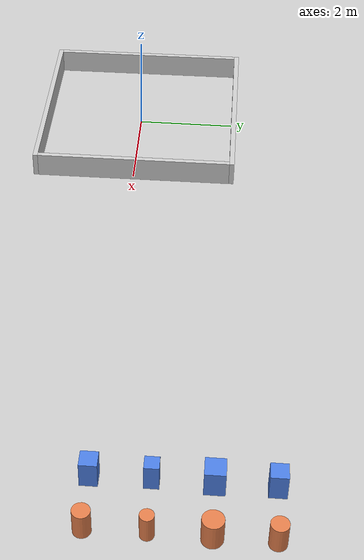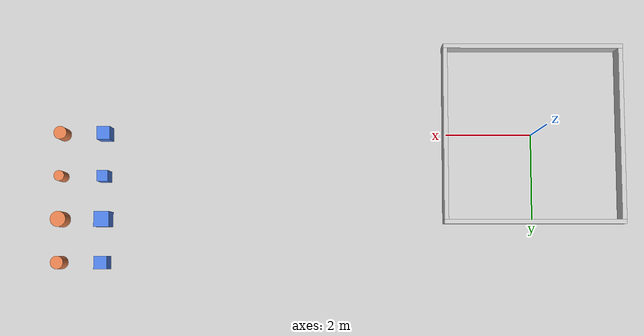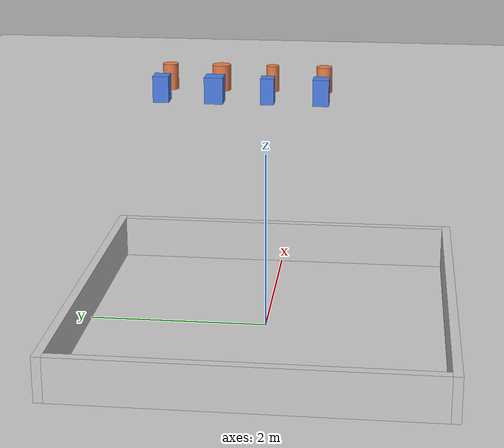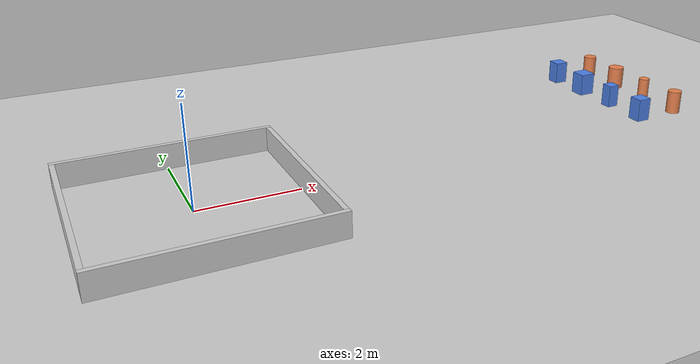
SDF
<?xml version="1.0" ?>
<sdf version="1.6">
  <world name="default">
    <!-- ROS 2 World Plugin for state services (/gazebo/set_entity_state, /gazebo/get_entity_state) -->
    <plugin name="gazebo_ros_state" filename="libgazebo_ros_state.so">
      <ros>
        <namespace>/gazebo</namespace>
      </ros>
      <update_rate>50.0</update_rate>
    </plugin>

    <!-- Sun light -->
    <include>
      <uri>model://sun</uri>
    </include>

    <!-- Ground plane -->
    <include>
      <uri>model://ground_plane</uri>
    </include>

    <!-- Physics settings -->
    <physics type="ode">
      <real_time_update_rate>1000.0</real_time_update_rate>
      <max_step_size>0.001</max_step_size>
      <real_time_factor>1.0</real_time_factor>
      <ode>
        <solver>
          <type>quick</type>
          <iters>50</iters>
          <sor>1.3</sor>
        </solver>
        <constraints>
          <cfm>0.0</cfm>
          <erp>0.2</erp>
          <contact_max_correcting_vel>100.0</contact_max_correcting_vel>
          <contact_surface_layer>0.001</contact_surface_layer>
        </constraints>
      </ode>
    </physics>

    <!-- 4m x 4m Boundary Walls (Centered at 0, 0) -->
    <model name="arena_walls">
      <static>true</static>
      <!-- North Wall (y = +2.05) -->
      <link name="wall_north">
        <pose>0.0 2.05 0.25 0 0 0</pose>
        <collision name="collision">
          <geometry>
            <box>
              <size>4.2 0.1 0.5</size>
            </box>
          </geometry>
        </collision>
        <visual name="visual">
          <geometry>
            <box>
              <size>4.2 0.1 0.5</size>
            </box>
          </geometry>
          <material>
            <ambient>0.7 0.7 0.7 1</ambient>
            <diffuse>0.8 0.8 0.8 1</diffuse>
          </material>
        </visual>
      </link>

      <!-- South Wall (y = -2.05) -->
      <link name="wall_south">
        <pose>0.0 -2.05 0.25 0 0 0</pose>
        <collision name="collision">
          <geometry>
            <box>
              <size>4.2 0.1 0.5</size>
            </box>
          </geometry>
        </collision>
        <visual name="visual">
          <geometry>
            <box>
              <size>4.2 0.1 0.5</size>
            </box>
          </geometry>
          <material>
            <ambient>0.7 0.7 0.7 1</ambient>
            <diffuse>0.8 0.8 0.8 1</diffuse>
          </material>
        </visual>
      </link>

      <!-- East Wall (x = +2.05) -->
      <link name="wall_east">
        <pose>2.05 0.0 0.25 0 0 0</pose>
        <collision name="collision">
          <geometry>
            <box>
              <size>0.1 4.0 0.5</size>
            </box>
          </geometry>
        </collision>
        <visual name="visual">
          <geometry>
            <box>
              <size>0.1 4.0 0.5</size>
            </box>
          </geometry>
          <material>
            <ambient>0.7 0.7 0.7 1</ambient>
            <diffuse>0.8 0.8 0.8 1</diffuse>
          </material>
        </visual>
      </link>

      <!-- West Wall (x = -2.05) -->
      <link name="wall_west">
        <pose>-2.05 0.0 0.25 0 0 0</pose>
        <collision name="collision">
          <geometry>
            <box>
              <size>0.1 4.0 0.5</size>
            </box>
          </geometry>
        </collision>
        <visual name="visual">
          <geometry>
            <box>
              <size>0.1 4.0 0.5</size>
            </box>
          </geometry>
          <material>
            <ambient>0.7 0.7 0.7 1</ambient>
            <diffuse>0.8 0.8 0.8 1</diffuse>
          </material>
        </visual>
      </link>
    </model>

    <!-- Pre-spawned Obstacle Pool (Parked outside arena at x >= 10.0 initially) -->
    <!-- Obstacle Box 1 -->
    <model name="obstacle_box_1">
      <static>false</static>
      <pose>10.0 0.0 0.25 0 0 0</pose>
      <link name="link">
        <gravity>false</gravity>
        <kinematic>true</kinematic>
        <inertial>
          <mass>1.0</mass>
          <inertia><ixx>0.02</ixx><ixy>0</ixy><ixz>0</ixz><iyy>0.02</iyy><iyz>0</iyz><izz>0.02</izz></inertia>
        </inertial>
        <collision name="col">
          <geometry><box><size>0.3 0.3 0.5</size></box></geometry>
        </collision>
        <visual name="vis">
          <geometry><box><size>0.3 0.3 0.5</size></box></geometry>
          <material><ambient>0.2 0.4 0.8 1</ambient><diffuse>0.3 0.5 0.9 1</diffuse></material>
        </visual>
      </link>
    </model>

    <!-- Obstacle Box 2 -->
    <model name="obstacle_box_2">
      <static>false</static>
      <pose>10.0 1.0 0.25 0 0 0</pose>
      <link name="link">
        <gravity>false</gravity>
        <kinematic>true</kinematic>
        <inertial>
          <mass>1.0</mass>
          <inertia><ixx>0.02</ixx><ixy>0</ixy><ixz>0</ixz><iyy>0.02</iyy><iyz>0</iyz><izz>0.02</izz></inertia>
        </inertial>
        <collision name="col">
          <geometry><box><size>0.25 0.25 0.5</size></box></geometry>
        </collision>
        <visual name="vis">
          <geometry><box><size>0.25 0.25 0.5</size></box></geometry>
          <material><ambient>0.2 0.4 0.8 1</ambient><diffuse>0.3 0.5 0.9 1</diffuse></material>
        </visual>
      </link>
    </model>

    <!-- Obstacle Box 3 -->
    <model name="obstacle_box_3">
      <static>false</static>
      <pose>10.0 2.0 0.25 0 0 0</pose>
      <link name="link">
        <gravity>false</gravity>
        <kinematic>true</kinematic>
        <inertial>
          <mass>1.0</mass>
          <inertia><ixx>0.02</ixx><ixy>0</ixy><ixz>0</ixz><iyy>0.02</iyy><iyz>0</iyz><izz>0.02</izz></inertia>
        </inertial>
        <collision name="col">
          <geometry><box><size>0.35 0.35 0.5</size></box></geometry>
        </collision>
        <visual name="vis">
          <geometry><box><size>0.35 0.35 0.5</size></box></geometry>
          <material><ambient>0.2 0.4 0.8 1</ambient><diffuse>0.3 0.5 0.9 1</diffuse></material>
        </visual>
      </link>
    </model>

    <!-- Obstacle Box 4 -->
    <model name="obstacle_box_4">
      <static>false</static>
      <pose>10.0 3.0 0.25 0 0 0</pose>
      <link name="link">
        <gravity>false</gravity>
        <kinematic>true</kinematic>
        <inertial>
          <mass>1.0</mass>
          <inertia><ixx>0.02</ixx><ixy>0</ixy><ixz>0</ixz><iyy>0.02</iyy><iyz>0</iyz><izz>0.02</izz></inertia>
        </inertial>
        <collision name="col">
          <geometry><box><size>0.3 0.3 0.5</size></box></geometry>
        </collision>
        <visual name="vis">
          <geometry><box><size>0.3 0.3 0.5</size></box></geometry>
          <material><ambient>0.2 0.4 0.8 1</ambient><diffuse>0.3 0.5 0.9 1</diffuse></material>
        </visual>
      </link>
    </model>

    <!-- Obstacle Cylinder 1 -->
    <model name="obstacle_cyl_1">
      <static>false</static>
      <pose>11.0 0.0 0.25 0 0 0</pose>
      <link name="link">
        <gravity>false</gravity>
        <kinematic>true</kinematic>
        <inertial>
          <mass>1.0</mass>
          <inertia><ixx>0.02</ixx><ixy>0</ixy><ixz>0</ixz><iyy>0.02</iyy><iyz>0</iyz><izz>0.02</izz></inertia>
        </inertial>
        <collision name="col">
          <geometry><cylinder><radius>0.15</radius><length>0.5</length></cylinder></geometry>
        </collision>
        <visual name="vis">
          <geometry><cylinder><radius>0.15</radius><length>0.5</length></cylinder></geometry>
          <material><ambient>0.8 0.4 0.2 1</ambient><diffuse>0.9 0.5 0.3 1</diffuse></material>
        </visual>
      </link>
    </model>

    <!-- Obstacle Cylinder 2 -->
    <model name="obstacle_cyl_2">
      <static>false</static>
      <pose>11.0 1.0 0.25 0 0 0</pose>
      <link name="link">
        <gravity>false</gravity>
        <kinematic>true</kinematic>
        <inertial>
          <mass>1.0</mass>
          <inertia><ixx>0.02</ixx><ixy>0</ixy><ixz>0</ixz><iyy>0.02</iyy><iyz>0</iyz><izz>0.02</izz></inertia>
        </inertial>
        <collision name="col">
          <geometry><cylinder><radius>0.12</radius><length>0.5</length></cylinder></geometry>
        </collision>
        <visual name="vis">
          <geometry><cylinder><radius>0.12</radius><length>0.5</length></cylinder></geometry>
          <material><ambient>0.8 0.4 0.2 1</ambient><diffuse>0.9 0.5 0.3 1</diffuse></material>
        </visual>
      </link>
    </model>

    <!-- Obstacle Cylinder 3 -->
    <model name="obstacle_cyl_3">
      <static>false</static>
      <pose>11.0 2.0 0.25 0 0 0</pose>
      <link name="link">
        <gravity>false</gravity>
        <kinematic>true</kinematic>
        <inertial>
          <mass>1.0</mass>
          <inertia><ixx>0.02</ixx><ixy>0</ixy><ixz>0</ixz><iyy>0.02</iyy><iyz>0</iyz><izz>0.02</izz></inertia>
        </inertial>
        <collision name="col">
          <geometry><cylinder><radius>0.18</radius><length>0.5</length></cylinder></geometry>
        </collision>
        <visual name="vis">
          <geometry><cylinder><radius>0.18</radius><length>0.5</length></cylinder></geometry>
          <material><ambient>0.8 0.4 0.2 1</ambient><diffuse>0.9 0.5 0.3 1</diffuse></material>
        </visual>
      </link>
    </model>

    <!-- Obstacle Cylinder 4 -->
    <model name="obstacle_cyl_4">
      <static>false</static>
      <pose>11.0 3.0 0.25 0 0 0</pose>
      <link name="link">
        <gravity>false</gravity>
        <kinematic>true</kinematic>
        <inertial>
          <mass>1.0</mass>
          <inertia><ixx>0.02</ixx><ixy>0</ixy><ixz>0</ixz><iyy>0.02</iyy><iyz>0</iyz><izz>0.02</izz></inertia>
        </inertial>
        <collision name="col">
          <geometry><cylinder><radius>0.15</radius><length>0.5</length></cylinder></geometry>
        </collision>
        <visual name="vis">
          <geometry><cylinder><radius>0.15</radius><length>0.5</length></cylinder></geometry>
          <material><ambient>0.8 0.4 0.2 1</ambient><diffuse>0.9 0.5 0.3 1</diffuse></material>
        </visual>
      </link>
    </model>

  </world>
</sdf>
